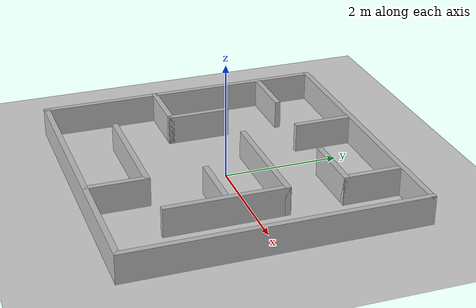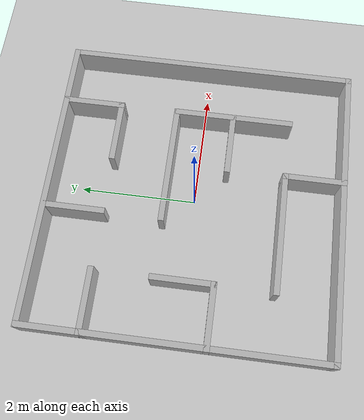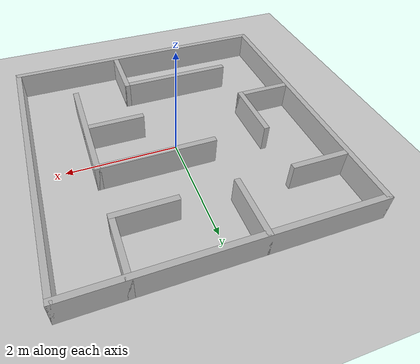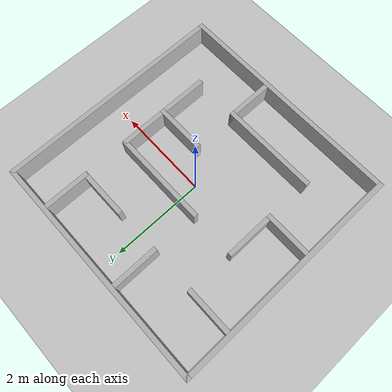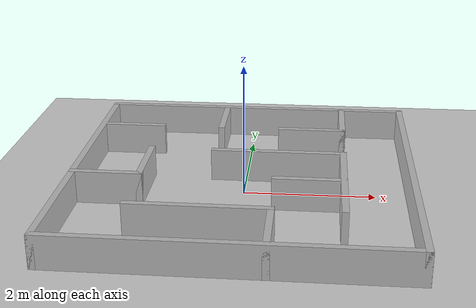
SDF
<?xml version="1.0"?>
<sdf version="1.6">
  <world name="maze">
    <include><uri>model://sun</uri></include>
    <include><uri>model://ground_plane</uri></include>

    <model name="wall_1">
      <static>true</static>
      <pose>0.0 -2.5 0.25 0 0 0</pose>
      <link name="link">
        <collision name="collision"><geometry><box><size>5.1 0.1 0.5</size></box></geometry></collision>
        <visual name="visual"><geometry><box><size>5.1 0.1 0.5</size></box></geometry></visual>
      </link>
    </model>
    <model name="wall_2">
      <static>true</static>
      <pose>0.0 2.5 0.25 0 0 0</pose>
      <link name="link">
        <collision name="collision"><geometry><box><size>5.1 0.1 0.5</size></box></geometry></collision>
        <visual name="visual"><geometry><box><size>5.1 0.1 0.5</size></box></geometry></visual>
      </link>
    </model>
    <model name="wall_3">
      <static>true</static>
      <pose>-2.5 0.0 0.25 0 0 0</pose>
      <link name="link">
        <collision name="collision"><geometry><box><size>0.1 5.1 0.5</size></box></geometry></collision>
        <visual name="visual"><geometry><box><size>0.1 5.1 0.5</size></box></geometry></visual>
      </link>
    </model>
    <model name="wall_4">
      <static>true</static>
      <pose>2.5 0.0 0.25 0 0 0</pose>
      <link name="link">
        <collision name="collision"><geometry><box><size>0.1 5.1 0.5</size></box></geometry></collision>
        <visual name="visual"><geometry><box><size>0.1 5.1 0.5</size></box></geometry></visual>
      </link>
    </model>
    <model name="wall_5">
      <static>true</static>
      <pose>-0.5 -1.5 0.25 0 0 0</pose>
      <link name="link">
        <collision name="collision"><geometry><box><size>2.1 0.1 0.5</size></box></geometry></collision>
        <visual name="visual"><geometry><box><size>2.1 0.1 0.5</size></box></geometry></visual>
      </link>
    </model>
    <model name="wall_6">
      <static>true</static>
      <pose>-2.0 -0.5 0.25 0 0 0</pose>
      <link name="link">
        <collision name="collision"><geometry><box><size>1.1 0.1 0.5</size></box></geometry></collision>
        <visual name="visual"><geometry><box><size>1.1 0.1 0.5</size></box></geometry></visual>
      </link>
    </model>
    <model name="wall_7">
      <static>true</static>
      <pose>1.0 -0.5 0.25 0 0 0</pose>
      <link name="link">
        <collision name="collision"><geometry><box><size>1.1 0.1 0.5</size></box></geometry></collision>
        <visual name="visual"><geometry><box><size>1.1 0.1 0.5</size></box></geometry></visual>
      </link>
    </model>
    <model name="wall_8">
      <static>true</static>
      <pose>0.5 0.5 0.25 0 0 0</pose>
      <link name="link">
        <collision name="collision"><geometry><box><size>2.1 0.1 0.5</size></box></geometry></collision>
        <visual name="visual"><geometry><box><size>2.1 0.1 0.5</size></box></geometry></visual>
      </link>
    </model>
    <model name="wall_9">
      <static>true</static>
      <pose>-2.0 1.5 0.25 0 0 0</pose>
      <link name="link">
        <collision name="collision"><geometry><box><size>1.1 0.1 0.5</size></box></geometry></collision>
        <visual name="visual"><geometry><box><size>1.1 0.1 0.5</size></box></geometry></visual>
      </link>
    </model>
    <model name="wall_10">
      <static>true</static>
      <pose>1.0 1.5 0.25 0 0 0</pose>
      <link name="link">
        <collision name="collision"><geometry><box><size>1.1 0.1 0.5</size></box></geometry></collision>
        <visual name="visual"><geometry><box><size>1.1 0.1 0.5</size></box></geometry></visual>
      </link>
    </model>
    <model name="wall_11">
      <static>true</static>
      <pose>-1.5 0.0 0.25 0 0 0</pose>
      <link name="link">
        <collision name="collision"><geometry><box><size>0.1 1.1 0.5</size></box></geometry></collision>
        <visual name="visual"><geometry><box><size>0.1 1.1 0.5</size></box></geometry></visual>
      </link>
    </model>
    <model name="wall_12">
      <static>true</static>
      <pose>-0.5 2.0 0.25 0 0 0</pose>
      <link name="link">
        <collision name="collision"><geometry><box><size>0.1 1.1 0.5</size></box></geometry></collision>
        <visual name="visual"><geometry><box><size>0.1 1.1 0.5</size></box></geometry></visual>
      </link>
    </model>
    <model name="wall_13">
      <static>true</static>
      <pose>0.5 -2.0 0.25 0 0 0</pose>
      <link name="link">
        <collision name="collision"><geometry><box><size>0.1 1.1 0.5</size></box></geometry></collision>
        <visual name="visual"><geometry><box><size>0.1 1.1 0.5</size></box></geometry></visual>
      </link>
    </model>
    <model name="wall_14">
      <static>true</static>
      <pose>1.5 -0.5 0.25 0 0 0</pose>
      <link name="link">
        <collision name="collision"><geometry><box><size>0.1 2.1 0.5</size></box></geometry></collision>
        <visual name="visual"><geometry><box><size>0.1 2.1 0.5</size></box></geometry></visual>
      </link>
    </model>
    <model name="wall_15">
      <static>true</static>
      <pose>1.5 2.0 0.25 0 0 0</pose>
      <link name="link">
        <collision name="collision"><geometry><box><size>0.1 1.1 0.5</size></box></geometry></collision>
        <visual name="visual"><geometry><box><size>0.1 1.1 0.5</size></box></geometry></visual>
      </link>
    </model>
  </world>
</sdf>
